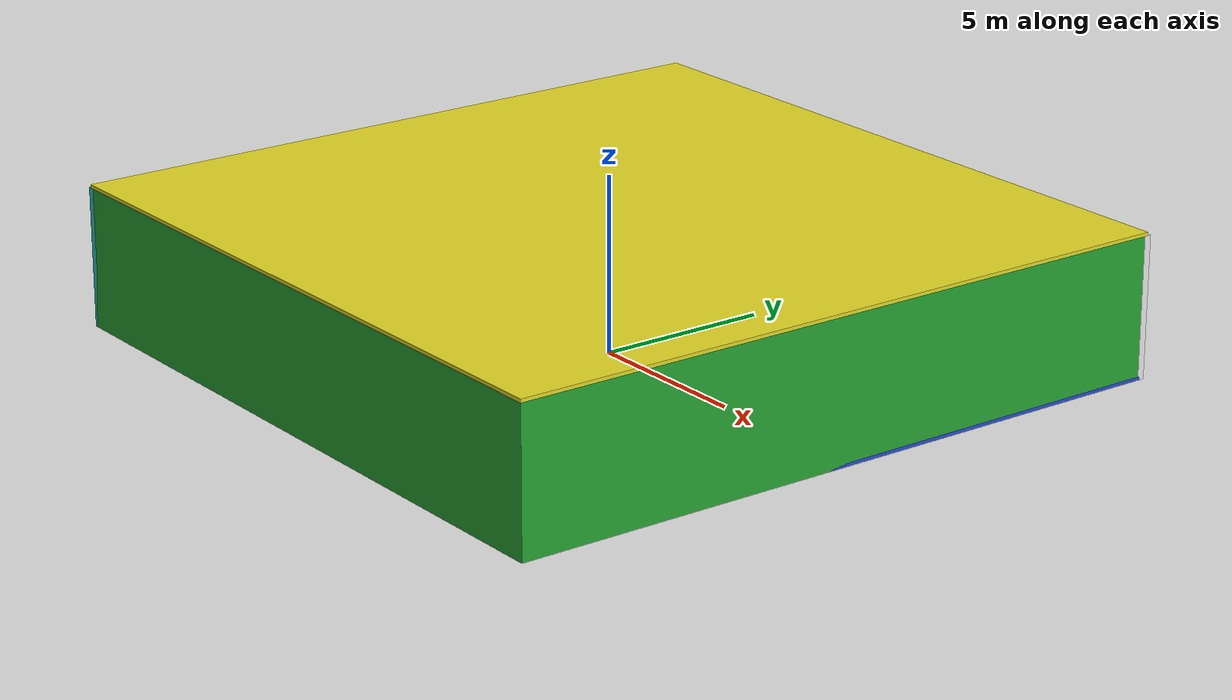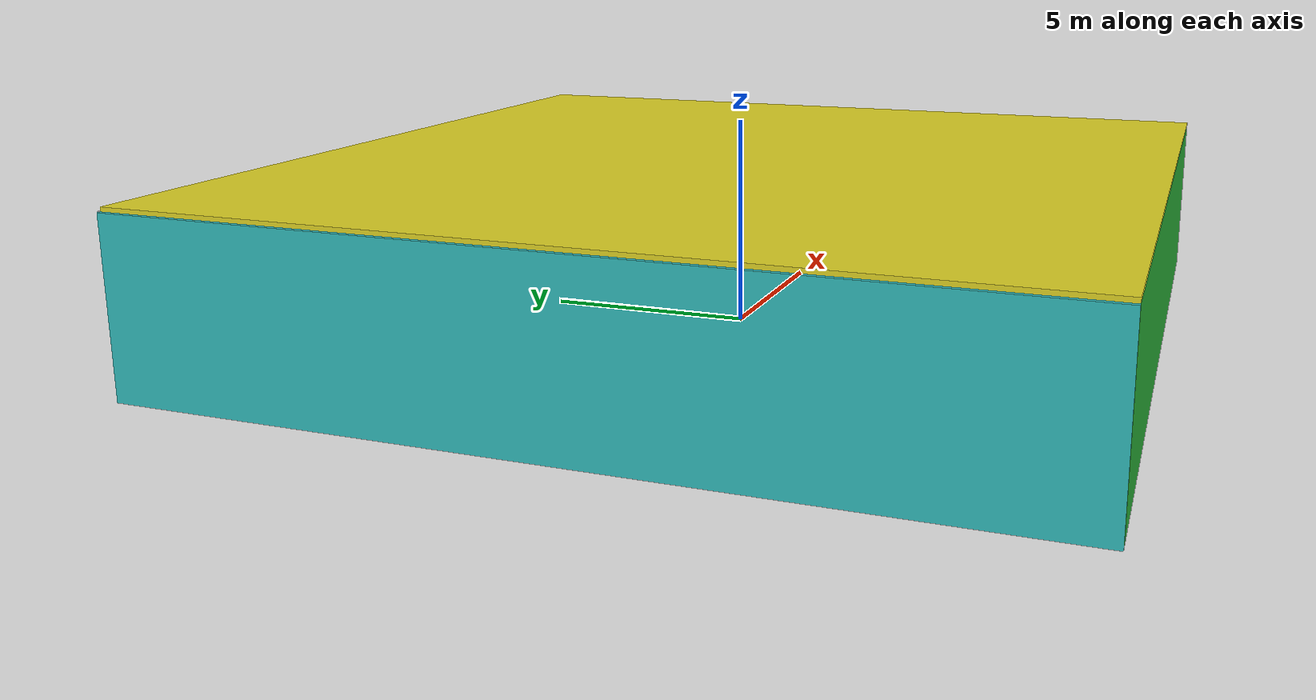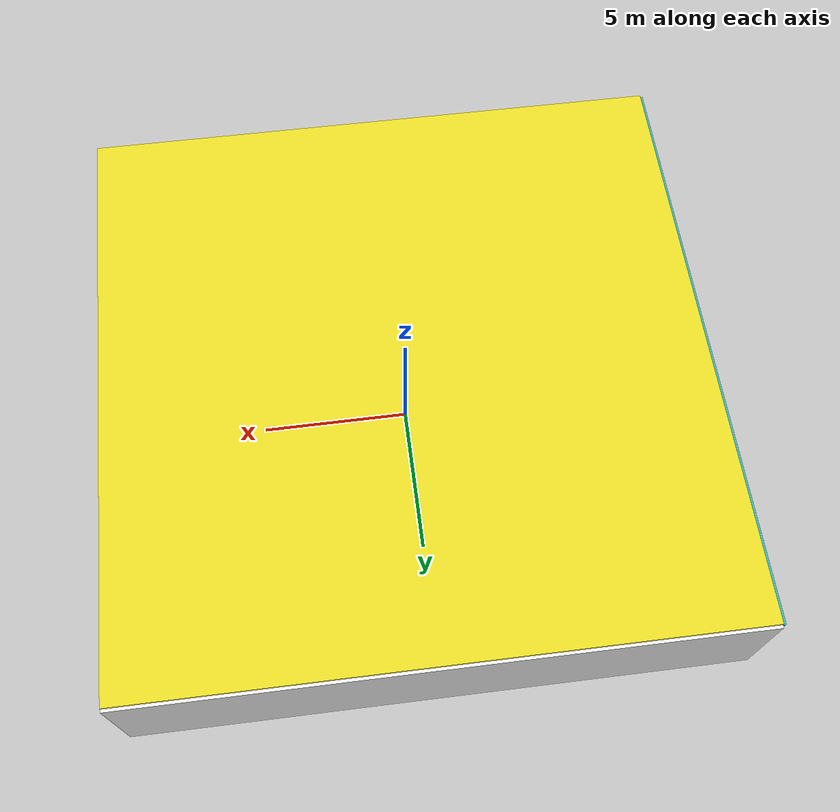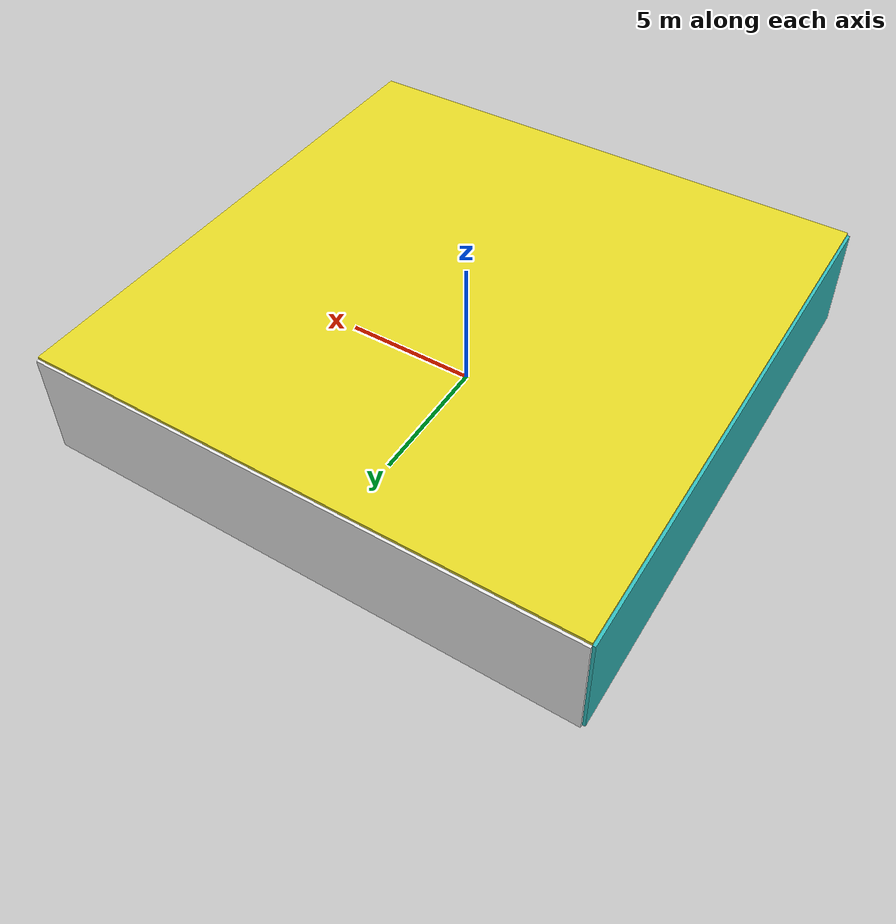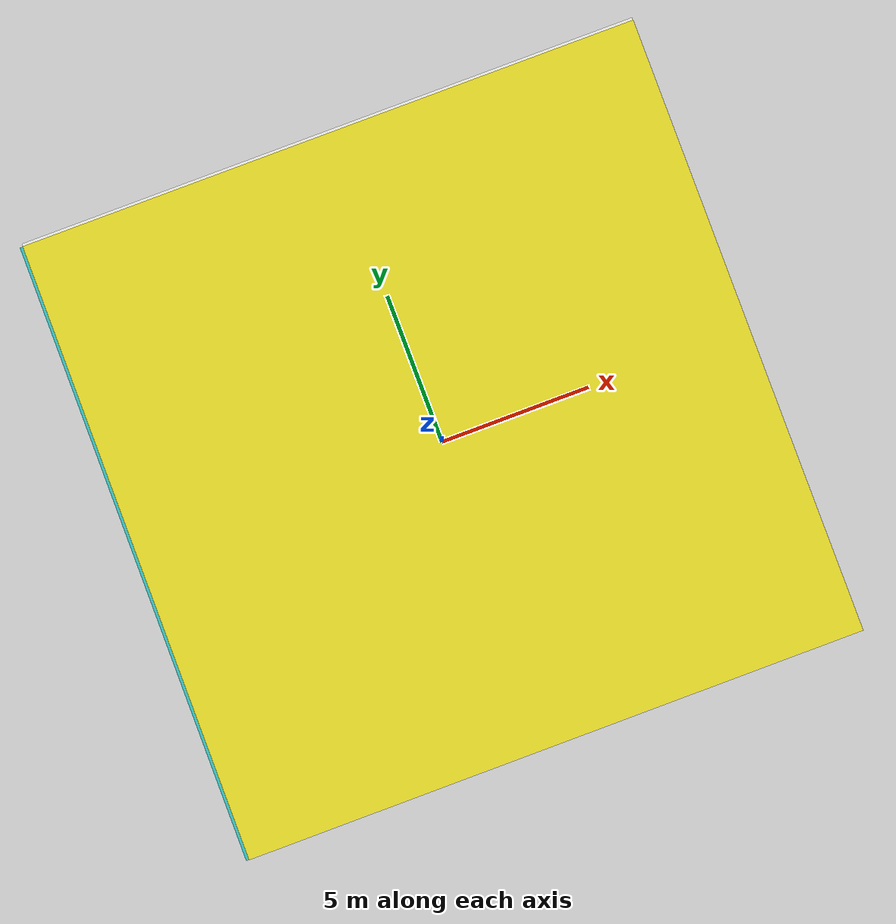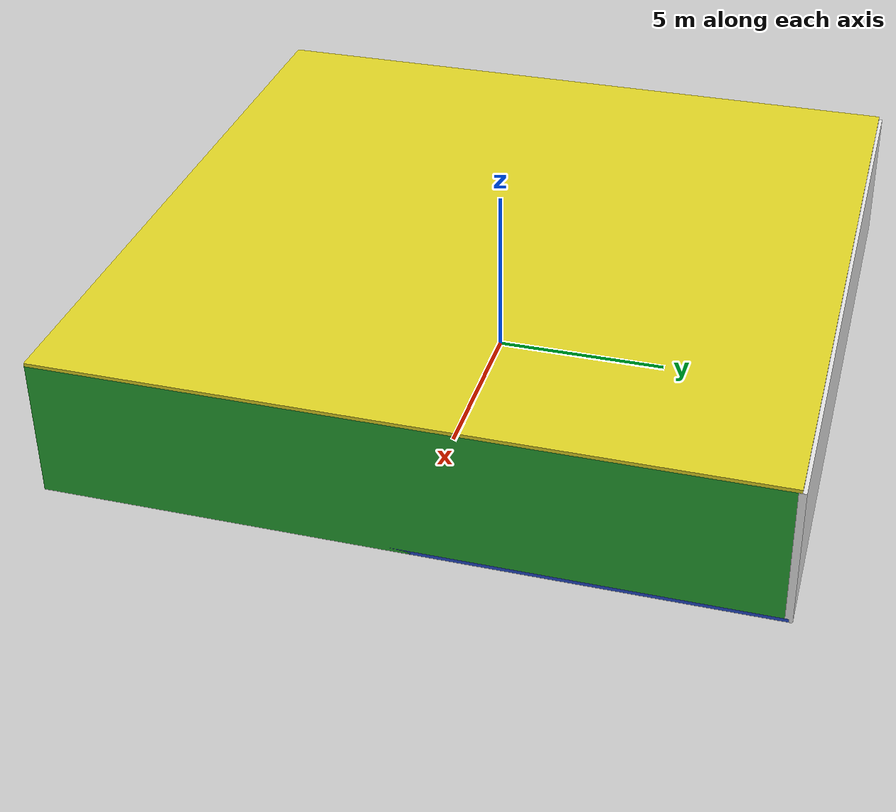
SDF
<sdf version="1.4">
 <world name="default">
  <physics type="ode">
   <max_step_size>0.001</max_step_size>
   <real_time_factor>1</real_time_factor>
   <real_time_update_rate>1000</real_time_update_rate>
   <gravity>0 0 -9.8</gravity>
  </physics>
  <scene><ambient>0.4 0.4 0.4 1</ambient><background>0.7 0.7 0.7 1</background><shadows>1</shadows></scene>
  <model name="Surrounding">
   <static>1</static>
   <link name="Ceiling">
    <collision name="Ceiling_Collision"><geometry><box><size>20 20 0.1</size></box></geometry></collision>
    <visual name="Ceiling_Visual">
     <geometry><box><size>20 20 0.1</size></box></geometry>
     <material>
      <script><uri>file://media/materials/scripts/gazebo.material</uri><name>Gazebo/YellowGlow</name></script>
     </material>
    </visual>
    <pose>0 0 4.05 0 0 0</pose>
   </link>
   <link name="Wall_South">
    <collision name="Wall_South_Collision">
     <geometry><box><size>20 0 4</size></box></geometry>
     <pose>0 0 2 0 -0 0</pose>
    </collision>
    <visual name="Wall_South_Visual">
     <pose>0 0 2 0 -0 0</pose>
     <geometry><box><size>20 0 4</size></box></geometry>
     <material>
      <script><uri>file://media/materials/scripts/gazebo.material</uri><name>Gazebo/GreenGlow</name></script>
     </material>
    </visual>
    <velocity_decay><linear>0</linear><angular>0</angular></velocity_decay>
    <pose>0 -10 0 0 -0 0</pose>
   </link>
   <link name="Wall_East">
    <collision name="Wall_21_Collision">
     <geometry><box><size>20 0 4</size></box></geometry>
     <pose>0 0 2 0 -0 0</pose>
    </collision>
    <visual name="Wall_21_Visual">
     <pose>0 0 2 0 -0 0</pose>
     <geometry><box><size>20 0 4</size></box></geometry>
     <material>
      <script><uri>file://media/materials/scripts/gazebo.material</uri><name>Gazebo/GreenGlow</name></script>
     </material>
    </visual>
    <velocity_decay><linear>0</linear><angular>0</angular></velocity_decay>
    <pose>10 0 0 0 -0 1.5708</pose>
   </link>
   <link name="Wall_North">
    <collision name="Wall_22_Collision">
     <geometry><box><size>20 0.2 4</size></box></geometry>
     <pose>0 0 2 0 -0 0</pose>
    </collision>
    <visual name="Wall_22_Visual">
     <pose>0 0 2 0 -0 0</pose>
     <geometry><box><size>20 0.2 4</size></box></geometry>
     <material>
      <script><uri>file://media/materials/scripts/gazebo.material</uri><name>Gazebo/White</name></script>
     </material>
    </visual>
    <velocity_decay><linear>0</linear><angular>0</angular></velocity_decay>
    <pose>0 10 0 0 -0 0</pose>
   </link>
   <link name="Wall_West">
    <collision name="Wall_23_Collision">
     <geometry><box><size>20 0.2 4</size></box></geometry>
     <pose>0 0 2 0 -0 0</pose>
    </collision>
    <visual name="Wall_23_Visual">
     <pose>0 0 2 0 -0 0</pose>
     <geometry><box><size>20 0.2 4</size></box></geometry>
     <material>
      <script><uri>file://media/materials/scripts/gazebo.material</uri><name>Gazebo/Turquoise</name></script>
     </material>
    </visual>
    <velocity_decay><linear>0</linear><angular>0</angular></velocity_decay>
    <pose>-10 0 0 0 0 -1.5708</pose>
   </link>
   <link name="Ground_link">
    <collision name="collision">
     <pose>0 0 .05 0 -0 0</pose>
     <geometry><box><size>20 20 0.1</size></box></geometry>
    </collision>
    <visual name="visual">
     <pose>0 0 .05 0 -0 0</pose>
     <geometry><box><size>20 20 0.1</size></box></geometry>
     <material>
      <script><uri>file://media/materials/scripts/gazebo.material</uri><name>Gazebo/BlueGlow</name></script>
     </material>
    </visual>
   </link>
   <static>1</static>
  </model>
  <spherical_coordinates>
   <surface_model>EARTH_WGS84</surface_model>
   <latitude_deg>0</latitude_deg>
   <longitude_deg>0</longitude_deg>
   <elevation>0</elevation>
   <heading_deg>0</heading_deg>
  </spherical_coordinates>
  <light name="lightball_0" type="diffuse">
   <diffuse>0.8 0.8 0.8 1</diffuse>
   <specular>0.2 0.2 0.2 1</specular>
   <attenuation>
    <range>100</range>
    <constant>0.7</constant>
    <linear>0.01</linear>
    <quadratic>0.001</quadratic>
   </attenuation>
   <direction>-0.5 0.1 -0.9</direction>
   <pose>2.66776069203 6.90330530694 3.77465139382 0 0 0</pose>
  </light>
  <light name="lightball_1" type="diffuse">
   <diffuse>0.8 0.8 0.8 1</diffuse>
   <specular>0.2 0.2 0.2 1</specular>
   <attenuation>
    <range>100</range>
    <constant>0.7</constant>
    <linear>0.01</linear>
    <quadratic>0.001</quadratic>
   </attenuation>
   <direction>-0.5 0.1 -0.9</direction>
   <pose>-6.75023547586 -7.62427299729 3.52313005223 0 0 0</pose>
  </light>
  <light name="lightball_2" type="diffuse">
   <diffuse>0.8 0.8 0.8 1</diffuse>
   <specular>0.2 0.2 0.2 1</specular>
   <attenuation>
    <range>100</range>
    <constant>0.7</constant>
    <linear>0.01</linear>
    <quadratic>0.001</quadratic>
   </attenuation>
   <direction>-0.5 0.1 -0.9</direction>
   <pose>-8.70445447983 -5.61506586721 0.940316568849 0 0 0</pose>
  </light>
  <light name="lightball_3" type="diffuse">
   <diffuse>0.8 0.8 0.8 1</diffuse>
   <specular>0.2 0.2 0.2 1</specular>
   <attenuation>
    <range>100</range>
    <constant>0.7</constant>
    <linear>0.01</linear>
    <quadratic>0.001</quadratic>
   </attenuation>
   <direction>-0.5 0.1 -0.9</direction>
   <pose>6.40021196847 -8.58586296807 3.33310269703 0 0 0</pose>
  </light>
  <light name="lightball_4" type="diffuse">
   <diffuse>0.8 0.8 0.8 1</diffuse>
   <specular>0.2 0.2 0.2 1</specular>
   <attenuation>
    <range>100</range>
    <constant>0.7</constant>
    <linear>0.01</linear>
    <quadratic>0.001</quadratic>
   </attenuation>
   <direction>-0.5 0.1 -0.9</direction>
   <pose>-2.85835259693 4.46476592079 2.88340371601 0 0 0</pose>
  </light>
  <light name="lightball_5" type="diffuse">
   <diffuse>0.8 0.8 0.8 1</diffuse>
   <specular>0.2 0.2 0.2 1</specular>
   <attenuation>
    <range>100</range>
    <constant>0.7</constant>
    <linear>0.01</linear>
    <quadratic>0.001</quadratic>
   </attenuation>
   <direction>-0.5 0.1 -0.9</direction>
   <pose>4.06704003638 -1.13663022503 3.34534294927 0 0 0</pose>
  </light>
  <light name="lightball_6" type="diffuse">
   <diffuse>0.8 0.8 0.8 1</diffuse>
   <specular>0.2 0.2 0.2 1</specular>
   <attenuation>
    <range>100</range>
    <constant>0.7</constant>
    <linear>0.01</linear>
    <quadratic>0.001</quadratic>
   </attenuation>
   <direction>-0.5 0.1 -0.9</direction>
   <pose>4.17416892575 -9.94470951147 3.30488365403 0 0 0</pose>
  </light>
  <light name="lightball_7" type="diffuse">
   <diffuse>0.8 0.8 0.8 1</diffuse>
   <specular>0.2 0.2 0.2 1</specular>
   <attenuation>
    <range>100</range>
    <constant>0.7</constant>
    <linear>0.01</linear>
    <quadratic>0.001</quadratic>
   </attenuation>
   <direction>-0.5 0.1 -0.9</direction>
   <pose>3.86751401552 -0.116935333197 2.84930733339 0 0 0</pose>
  </light>
  <light name="lightball_8" type="diffuse">
   <diffuse>0.8 0.8 0.8 1</diffuse>
   <specular>0.2 0.2 0.2 1</specular>
   <attenuation>
    <range>100</range>
    <constant>0.7</constant>
    <linear>0.01</linear>
    <quadratic>0.001</quadratic>
   </attenuation>
   <direction>-0.5 0.1 -0.9</direction>
   <pose>8.30018310545 9.17388633475 3.09784573915 0 0 0</pose>
  </light>
  <light name="lightball_9" type="diffuse">
   <diffuse>0.8 0.8 0.8 1</diffuse>
   <specular>0.2 0.2 0.2 1</specular>
   <attenuation>
    <range>100</range>
    <constant>0.7</constant>
    <linear>0.01</linear>
    <quadratic>0.001</quadratic>
   </attenuation>
   <direction>-0.5 0.1 -0.9</direction>
   <pose>-1.52480072815 -7.86015993147 3.39765294021 0 0 0</pose>
  </light>
  <light name="lightball_10" type="diffuse">
   <diffuse>0.8 0.8 0.8 1</diffuse>
   <specular>0.2 0.2 0.2 1</specular>
   <attenuation>
    <range>100</range>
    <constant>0.7</constant>
    <linear>0.01</linear>
    <quadratic>0.001</quadratic>
   </attenuation>
   <direction>-0.5 0.1 -0.9</direction>
   <pose>-5.43269221256 5.66037276786 1.13267770642 0 0 0</pose>
  </light>
  <include><uri>model://cabinet</uri><pose>-8.14274519793 -7.29958133642 0 0 0 1.97887236026</pose></include>
  <include>
   <uri>model://textured_shapes</uri>
   <pose>-7.98598407157 -0.873512574944 0 0 0 2.96850945936</pose>
  </include>
  <include><uri>model://cabinet</uri><pose>-4.04693680741 2.29678172837 0 0 0 0.606123672779</pose></include>
  <include><uri>model://cabinet</uri><pose>-4.17932316078 4.98316570417 0 0 0 0.582204678491</pose></include>
  <include><uri>model://table</uri><pose>-1.128495258 1.3403357181 0 0 0 2.1910403866</pose></include>
 </world>
</sdf>

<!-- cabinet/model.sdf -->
<sdf version="1.5">
  <model name="cabinet">
    <static>true</static>
    <link name="cabinet_bottom_plate">
      <inertial>
        <pose>0 0 -1 0 0 0</pose>
        <inertia>
          <ixx>2.050000</ixx>
          <ixy>0</ixy>
          <ixz>0</ixz>
          <iyy>2.050000</iyy>
          <iyz>0</iyz>
          <izz>2.050000</izz>
        </inertia>
        <mass>25.000000</mass>
      </inertial>
      <collision name="cabinet_bottom_plate_geom">
        <pose>0 0 0.010000 0 0 0</pose>
        <geometry>
          <box>
            <size>0.450000 0.450000 0.020000</size>
          </box>
        </geometry>
      </collision>
      <visual name="cabinet_bottom_plate_geom_visual">
        <pose>0 0 0.010000 0 0 0</pose>
        <geometry>
          <box>
            <size>0.450000 0.450000 0.020000</size>
          </box>
        </geometry>
        <material>
          <script>
            <uri>model://media/materials/scripts/gazebo.material</uri>
            <name>Gazebo/Wood</name>
          </script>
        </material>
      </visual>
      <collision name="cabinet_bottom_plate_geom_cabinet_back_plate">
        <pose>0.235000 0 0.510000 0 0 0</pose>
        <geometry>
          <box>
            <size>0.020000 0.450000 1.020000</size>
          </box>
        </geometry>
      </collision>
      <visual name="cabinet_bottom_plate_geom_cabinet_back_plate_visual">
        <pose>0.235000 0 0.510000 0 0 0</pose>
        <geometry>
          <box>
            <size>0.020000 0.450000 1.020000</size>
          </box>
        </geometry>
        <material>
          <script>
            <uri>model://media/materials/scripts/gazebo.material</uri>
            <name>Gazebo/Wood</name>
          </script>
        </material>
      </visual>
      <collision name="cabinet_bottom_plate_geom_cabinet_left_plate">
        <pose>0 0.235000 0.510000 0 0 0</pose>
        <geometry>
          <box>
            <size>0.450000 0.020000 1.020000</size>
          </box>
        </geometry>
      </collision>
      <visual name="cabinet_bottom_plate_geom_cabinet_left_plate_visual">
        <pose>0 0.235000 0.510000 0 0 0</pose>
        <geometry>
          <box>
            <size>0.450000 0.020000 1.020000</size>
          </box>
        </geometry>
        <material>
          <script>
            <uri>model://media/materials/scripts/gazebo.material</uri>
            <name>Gazebo/Wood</name>
          </script>
        </material>
      </visual>
      <collision name="cabinet_bottom_plate_geom_cabinet_middle_plate">
        <pose>0 0 0.510000 0 0 0</pose>
        <geometry>
          <box>
            <size>0.450000 0.450000 0.020000</size>
          </box>
        </geometry>
      </collision>
      <visual name="cabinet_bottom_plate_geom_cabinet_middle_plate_visual">
        <pose>0 0 0.510000 0 0 0</pose>
        <geometry>
          <box>
            <size>0.450000 0.450000 0.020000</size>
          </box>
        </geometry>
        <material>
          <script>
            <uri>model://media/materials/scripts/gazebo.material</uri>
            <name>Gazebo/Wood</name>
          </script>
        </material>
      </visual>
      <collision name="cabinet_bottom_plate_geom_cabinet_right_plate">
        <pose>0 -0.235000 0.510000 0 0 0</pose>
        <geometry>
          <box>
            <size>0.450000 0.020000 1.020000</size>
          </box>
        </geometry>
      </collision>
      <visual name="cabinet_bottom_plate_geom_cabinet_right_plate_visual">
        <pose>0 -0.235000 0.510000 0 0 0</pose>
        <geometry>
          <box>
            <size>0.450000 0.020000 1.020000</size>
          </box>
        </geometry>
        <material>
          <script>
            <uri>model://media/materials/scripts/gazebo.material</uri>
            <name>Gazebo/Wood</name>
          </script>
        </material>
      </visual>
      <collision name="cabinet_bottom_plate_geom_cabinet_top_plate">
        <pose>0 0 1.010000 0 0 0</pose>
        <geometry>
          <box>
            <size>0.450000 0.450000 0.020000</size>
          </box>
        </geometry>
      </collision>
      <visual name="cabinet_bottom_plate_geom_cabinet_top_plate_visual">
        <pose>0 0 1.010000 0 0 0</pose>
        <geometry>
          <box>
            <size>0.450000 0.450000 0.020000</size>
          </box>
        </geometry>
        <material>
          <script>
            <uri>model://media/materials/scripts/gazebo.material</uri>
            <name>Gazebo/Wood</name>
          </script>
        </material>
      </visual>
    </link>
  </model>
</sdf>

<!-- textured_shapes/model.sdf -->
<sdf version="1.6">
  <model name="textured_shapes">
    <pose>0 0 0.5 0 0 0</pose>
    <link name="box">
      <pose>0 -1.5 0 0 0 0</pose>
      <collision name="collision">
        <geometry>
          <box>
            <size>1 1 1</size>
          </box>
        </geometry>
      </collision>
      <visual name="visual">
        <geometry>
          <box>
            <size>1 1 1</size>
          </box>
        </geometry>
        <material>
          <script>
            <uri>model://../model_source/models/textured_shapes/materials/scripts</uri>
            <uri>model://../model_source/models/textured_shapes/materials/textures</uri>
            <name>TexturedShape/Squares</name>
          </script>
        </material>
      </visual>
    </link>
    <link name="sphere">
      <collision name="collision">
        <geometry>
          <sphere>
            <radius>0.5</radius>
          </sphere>
        </geometry>
      </collision>
      <visual name="visual">
        <geometry>
          <sphere>
            <radius>0.5</radius>
          </sphere>
        </geometry>
        <material>
          <script>
            <uri>model://../model_source/models/textured_shapes/materials/scripts</uri>
            <uri>model://../model_source/models/textured_shapes/materials/textures</uri>
            <name>TexturedShape/Squares</name>
          </script>
        </material>
      </visual>
    </link>
    <link name="cylinder">
      <pose>0 1.5 0 0 0 0</pose>
      <collision name="collision">
        <geometry>
          <cylinder>
            <radius>0.5</radius>
            <length>1</length>
          </cylinder>
        </geometry>
      </collision>
      <visual name="visual">
        <geometry>
          <cylinder>
            <radius>0.5</radius>
            <length>1</length>
          </cylinder>
        </geometry>
        <material>
          <script>
            <uri>model://../model_source/models/textured_shapes/materials/scripts</uri>
            <uri>model://../model_source/models/textured_shapes/materials/textures</uri>
            <name>TexturedShape/Squares</name>
          </script>
        </material>
      </visual>
    </link>
  </model>
</sdf>

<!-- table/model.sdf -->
<sdf version="1.5">
  <model name="table">
    <static>true</static>
    <link name="link">
      <collision name="surface">
        <pose>0 0 1.0 0 0 0</pose>
        <geometry>
          <box>
            <size>1.5 0.8 0.03</size>
          </box>
        </geometry>
        <surface>
          <friction>
            <ode>
              <mu>0.6</mu>
              <mu2>0.6</mu2>
            </ode>
          </friction>
        </surface>
      </collision>
      <visual name="visual1">
        <pose>0 0 1.0 0 0 0</pose>
        <geometry>
          <box>
            <size>1.5 0.8 0.03</size>
          </box>
        </geometry>
        <material>
          <script>
            <uri>model://media/materials/scripts/gazebo.material</uri>
            <name>Gazebo/Wood</name>
          </script>
        </material>
      </visual>
      <collision name="front_left_leg">
        <pose>0.68 0.38 0.5 0 0 0</pose>
        <geometry>
          <cylinder>
            <radius>0.02</radius>
            <length>1.0</length>
          </cylinder>
        </geometry>
      </collision>
      <visual name="front_left_leg">
        <pose>0.68 0.38 0.5 0 0 0</pose>
        <geometry>
          <cylinder>
            <radius>0.02</radius>
            <length>1.0</length>
          </cylinder>
        </geometry>
        <material>
          <script>
            <uri>model://media/materials/scripts/gazebo.material</uri>
            <name>Gazebo/Grey</name>
          </script>
        </material>
      </visual>
      <collision name="front_right_leg">
        <pose>0.68 -0.38 0.5 0 0 0</pose>
        <geometry>
          <cylinder>
            <radius>0.02</radius>
            <length>1.0</length>
          </cylinder>
        </geometry>
      </collision>
      <visual name="front_right_leg">
        <pose>0.68 -0.38 0.5 0 0 0</pose>
        <geometry>
          <cylinder>
            <radius>0.02</radius>
            <length>1.0</length>
          </cylinder>
        </geometry>
        <material>
          <script>
            <uri>model://media/materials/scripts/gazebo.material</uri>
            <name>Gazebo/Grey</name>
          </script>
        </material>
      </visual>
      <collision name="back_right_leg">
        <pose>-0.68 -0.38 0.5 0 0 0</pose>
        <geometry>
          <cylinder>
            <radius>0.02</radius>
            <length>1.0</length>
          </cylinder>
        </geometry>
      </collision>
      <visual name="back_right_leg">
        <pose>-0.68 -0.38 0.5 0 0 0</pose>
        <geometry>
          <cylinder>
            <radius>0.02</radius>
            <length>1.0</length>
          </cylinder>
        </geometry>
        <material>
          <script>
            <uri>model://media/materials/scripts/gazebo.material</uri>
            <name>Gazebo/Grey</name>
          </script>
        </material>
      </visual>
      <collision name="back_left_leg">
        <pose>-0.68 0.38 0.5 0 0 0</pose>
        <geometry>
          <cylinder>
            <radius>0.02</radius>
            <length>1.0</length>
          </cylinder>
        </geometry>
      </collision>
      <visual name="back_left_leg">
        <pose>-0.68 0.38 0.5 0 0 0</pose>
        <geometry>
          <cylinder>
            <radius>0.02</radius>
            <length>1.0</length>
          </cylinder>
        </geometry>
        <material>
          <script>
            <uri>model://media/materials/scripts/gazebo.material</uri>
            <name>Gazebo/Grey</name>
          </script>
        </material>
      </visual>
    </link>
  </model>
</sdf>
